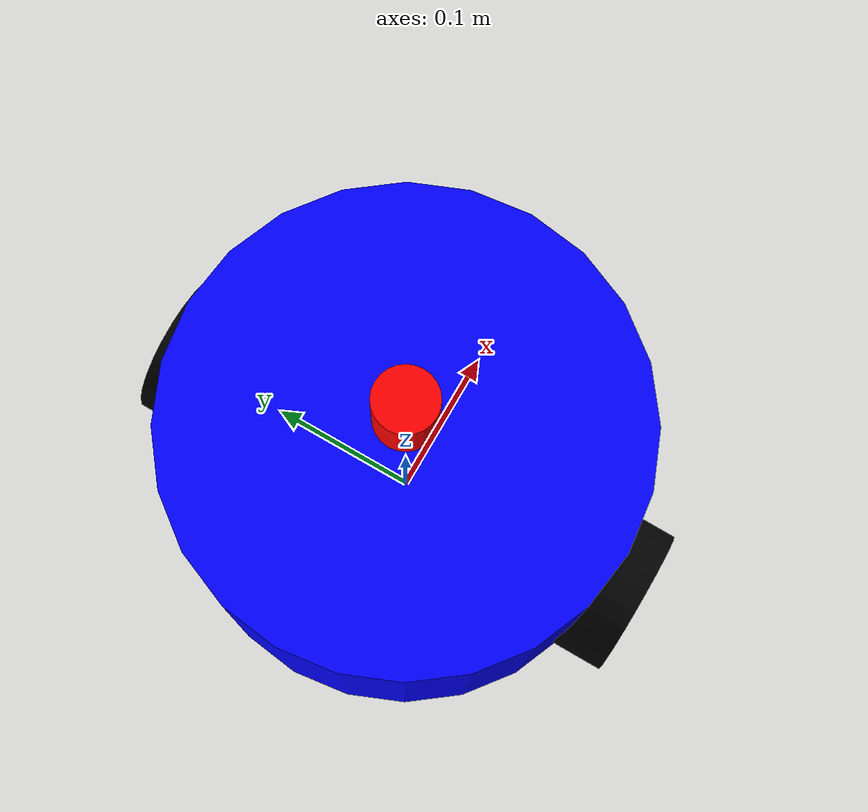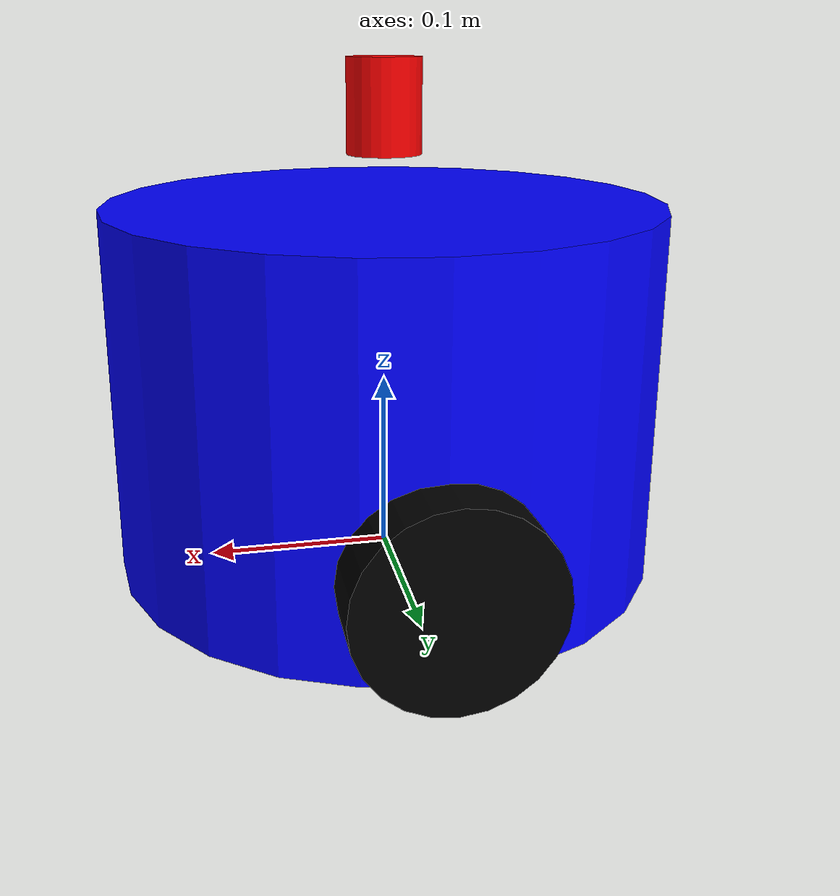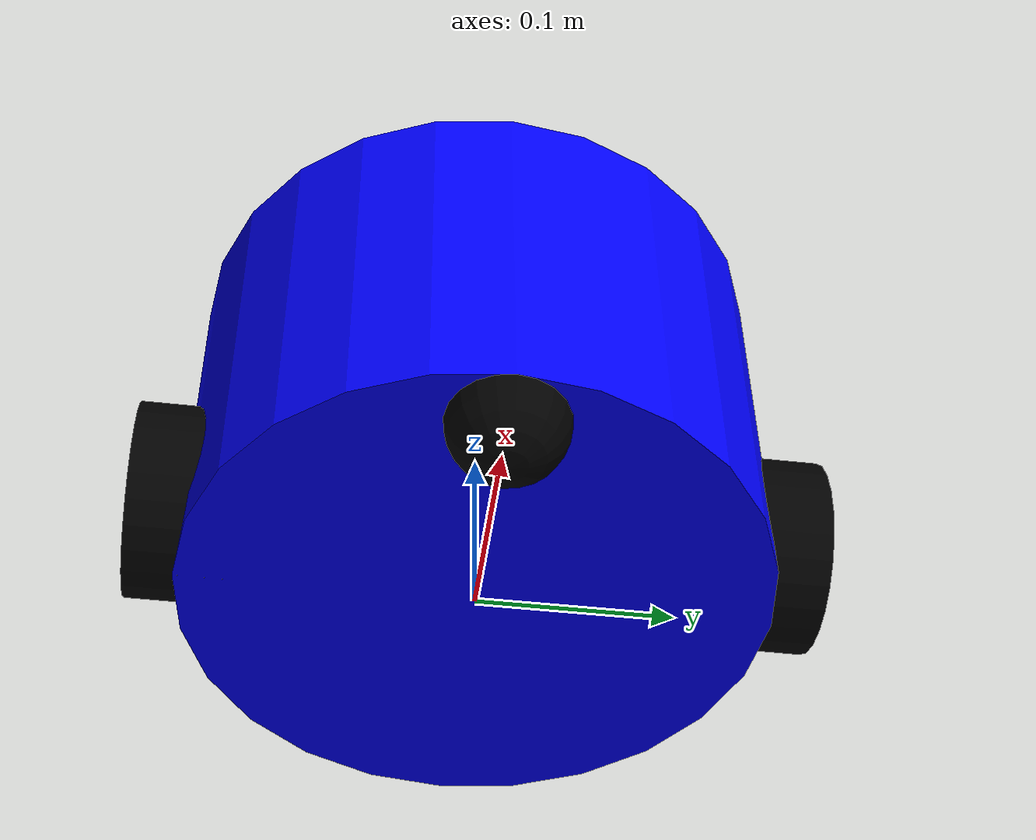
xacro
<?xml version="1.0"?>
<robot name="turtlebot_nav" xmlns:xacro="http://ros.org/wiki/xacro">

  <material name="blue">
    <color rgba="0 0 1 1"/>
  </material>
  <material name="black">
    <color rgba="0 0 0 1"/>
  </material>
  <material name="red">
    <color rgba="1 0 0 1"/>
  </material>

  <link name="base_link">
    <visual>
      <geometry>
        <cylinder radius="0.15" length="0.2"/>
      </geometry>
      <origin xyz="0 0 0.1" rpy="0 0 0"/>
      <material name="blue"/>
    </visual>
    <collision>
      <geometry>
        <cylinder radius="0.15" length="0.2"/>
      </geometry>
      <origin xyz="0 0 0.1" rpy="0 0 0"/>
    </collision>
    <inertial>
      <mass value="5.0"/>
      <origin xyz="0 0 0.1"/>
      <inertia ixx="0.1" iyy="0.1" izz="0.1" ixy="0.0" ixz="0.0" iyz="0.0"/>
    </inertial>
  </link>

  <link name="left_wheel">
    <visual>
      <geometry>
        <cylinder radius="0.05" length="0.05"/>
      </geometry>
      <origin xyz="0 0 0" rpy="1.5707 0 0"/>
      <material name="black"/>
    </visual>
    <collision>
      <geometry>
        <cylinder radius="0.05" length="0.05"/>
      </geometry>
      <origin xyz="0 0 0" rpy="1.5707 0 0"/>
    </collision>
    <inertial>
      <mass value="0.1"/>
      <origin xyz="0 0 0"/>
      <inertia ixx="0.001" iyy="0.001" izz="0.001" ixy="0.0" ixz="0.0" iyz="0.0"/>
    </inertial>
  </link>

  <link name="right_wheel">
    <visual>
      <geometry>
        <cylinder radius="0.05" length="0.05"/>
      </geometry>
      <origin xyz="0 0 0" rpy="1.5707 0 0"/>
      <material name="black"/>
    </visual>
    <collision>
      <geometry>
        <cylinder radius="0.05" length="0.05"/>
      </geometry>
      <origin xyz="0 0 0" rpy="1.5707 0 0"/>
    </collision>
    <inertial>
      <mass value="0.1"/>
      <origin xyz="0 0 0"/>
      <inertia ixx="0.001" iyy="0.001" izz="0.001" ixy="0.0" ixz="0.0" iyz="0.0"/>
    </inertial>
  </link>

  <link name="caster_link">
    <visual>
      <geometry>
        <sphere radius="0.03"/>
      </geometry>
      <origin xyz="0 0 0" rpy="0 0 0"/>
      <material name="black"/>
    </visual>
    <collision>
      <geometry>
        <sphere radius="0.03"/>
      </geometry>
    </collision>
    <inertial>
      <mass value="0.05"/>
      <origin xyz="0 0 0"/>
      <inertia ixx="0.0001" iyy="0.0001" izz="0.0001" ixy="0.0" ixz="0.0" iyz="0.0"/>
    </inertial>
  </link>

  <link name="laser_link">
    <visual>
      <geometry>
        <cylinder radius="0.02" length="0.05"/>
      </geometry>
      <origin xyz="0 0 0.025" rpy="0 0 0"/>
      <material name="red"/>
    </visual>
    <inertial>
      <mass value="0.1"/>
      <origin xyz="0 0 0"/>
      <inertia ixx="0.0001" iyy="0.0001" izz="0.0001" ixy="0.0" ixz="0.0" iyz="0.0"/>
    </inertial>
  </link>

  <joint name="left_wheel_joint" type="continuous">
    <parent link="base_link"/>
    <child link="left_wheel"/>
    <origin xyz="0 0.15 0.05" rpy="0 0 0"/>
    <axis xyz="0 1 0"/>
  </joint>

  <joint name="right_wheel_joint" type="continuous">
    <parent link="base_link"/>
    <child link="right_wheel"/>
    <origin xyz="0 -0.15 0.05" rpy="0 0 0"/>
    <axis xyz="0 1 0"/>
  </joint>

  <joint name="caster_joint" type="fixed">
    <parent link="base_link"/>
    <child link="caster_link"/>
    <origin xyz="0.12 0 0" rpy="0 0 0"/>
  </joint>

  <joint name="laser_joint" type="fixed">
    <parent link="base_link"/>
    <child link="laser_link"/>
    <origin xyz="0 0 0.225" rpy="0 0 0"/>
  </joint>

  <gazebo>
    <plugin name='libgazebo_ros_diff_drive' filename='libgazebo_ros_diff_drive.so'>
      <ros>
        <namespace>/</namespace>
        <publish_rate>100</publish_rate>
      </ros>
      <left_joint>left_wheel_joint</left_joint>
      <right_joint>right_wheel_joint</right_joint>
      <wheel_separation>0.3</wheel_separation>
      <wheel_radius>0.05</wheel_radius>
      <wheel_diameter>0.1</wheel_diameter>
      <odometry_frame>odom</odometry_frame>
      <robot_base_frame>base_link</robot_base_frame>
      <publish_odom>true</publish_odom>
      <publish_odom_tf>true</publish_odom_tf>
      <publish_wheel_tf>false</publish_wheel_tf>
      <command_topic>cmd_vel</command_topic>
      <odom_topic>odom</odom_topic>
    </plugin>
  </gazebo>

  <gazebo reference="laser_link">
    <sensor type="ray" name="head_unit_laser">
      <pose>0 0 0 0 0 0</pose>
      <visualize>true</visualize>
      <update_rate>10</update_rate>
      <ray>
        <scan>
          <horizontal>
            <samples>360</samples>
            <resolution>1</resolution>
            <min_angle>-3.14</min_angle>
            <max_angle>3.14</max_angle>
          </horizontal>
        </scan>
        <range>
          <min>0.1</min>
          <max>6.0</max>
          <resolution>0.01</resolution>
        </range>
      </ray>
      <plugin name="gazebo_ros_laser_controller" filename="libgazebo_ros_ray_sensor.so">
        <ros>
          <namespace>/</namespace>
        </ros>
        <topicName>scan</topicName>
        <frameName>laser_link</frameName>
        <output_type>sensor_msgs/LaserScan</output_type>
        <alwaysOn>true</alwaysOn>
      </plugin>
    </sensor>
  </gazebo>

</robot>
